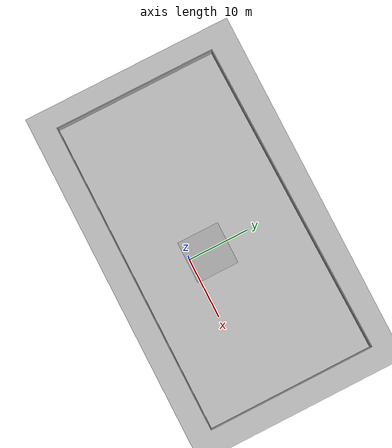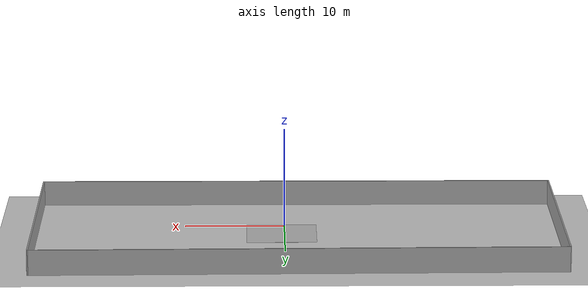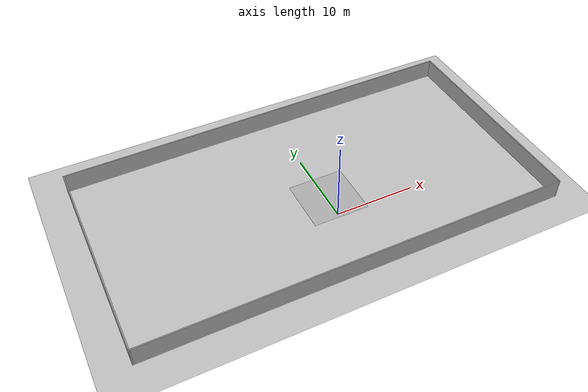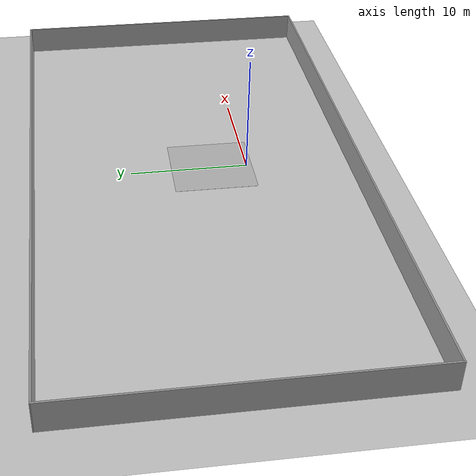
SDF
<sdf version="1.6">
 <world name="default">
  <light name="sun" type="directional">
   <pose>0 0 10 0 -0 0</pose>
   <diffuse>0.8 0.8 0.8 1</diffuse>
   <specular>0.2 0.2 0.2 1</specular>
   <attenuation>
    <range>1000</range>
    <constant>0.9</constant>
    <linear>0.01</linear>
    <quadratic>0.001</quadratic>
   </attenuation>
   <direction>-0.5 0.1 -0.9</direction>
  </light>
  <model name="ground_plane">
   <static>1</static>
   <link name="link">
    <collision name="collision">
     <geometry><plane><normal>0 0 1</normal><size>100 100</size></plane></geometry>
     <surface>
      <contact><collide_bitmask>65535</collide_bitmask></contact>
      <friction><ode><mu>100</mu><mu2>50</mu2></ode></friction>
     </surface>
    </collision>
    <visual name="visual">
     <cast_shadows>0</cast_shadows>
     <geometry><plane><normal>0 0 1</normal><size>100 100</size></plane></geometry>
     <material>
      <script><uri>file://media/materials/scripts/gazebo.material</uri><name>Gazebo/Grey</name></script>
     </material>
    </visual>
   </link>
  </model>
  <gravity>0 0 -9.8</gravity>
  <magnetic_field>6e-06 2.3e-05 -4.2e-05</magnetic_field>
  <atmosphere type="adiabatic"/>
  <physics name="default_physics" default="0" type="ode">
   <max_step_size>0.001</max_step_size>
   <real_time_factor>1</real_time_factor>
   <real_time_update_rate>1000</real_time_update_rate>
  </physics>
  <scene><ambient>0.4 0.4 0.4 1</ambient><background>0.7 0.7 0.7 1</background><shadows>1</shadows></scene>
  <audio><device>default</device></audio>
  <spherical_coordinates>
   <surface_model>EARTH_WGS84</surface_model>
   <latitude_deg>0</latitude_deg>
   <longitude_deg>0</longitude_deg>
   <elevation>0</elevation>
   <heading_deg>0</heading_deg>
  </spherical_coordinates>
  <model name="my_ground_plane">
   <static>1</static>
   <link name="link">
    <collision name="collision">
     <geometry><plane><normal>0 0 1</normal><size>100 100</size></plane></geometry>
     <surface><friction><ode><mu>100</mu><mu2>50</mu2></ode></friction></surface>
    </collision>
    <visual name="visual">
     <cast_shadows>0</cast_shadows>
     <geometry><plane><normal>0 0 1</normal><size>7 7</size></plane></geometry>
     <material>
      <script>
       <uri>model://my_ground_plane/materials/scripts</uri>
       <uri>model://my_ground_plane/materials/textures/</uri>
       <name>MyGroundPlane/Image</name>
      </script>
     </material>
    </visual>
   </link>
   <pose>0.322741 3.02822 0 0 -0 0</pose>
  </model>
  <model name="follwLine">
   <pose>-1.28073 4.87751 0 0 -0 0</pose>
   <link name="Wall_6">
    <collision name="Wall_6_Collision">
     <geometry><box><size>27 0.15 2.5</size></box></geometry>
     <pose>0 0 1.25 0 -0 0</pose>
    </collision>
    <visual name="Wall_6_Visual">
     <pose>0 0 1.25 0 -0 0</pose>
     <geometry><box><size>27 0.15 2.5</size></box></geometry>
     <material>
      <script><uri>file://media/materials/scripts/gazebo.material</uri><name>Gazebo/Grey</name></script>
      <ambient>1 1 1 1</ambient>
     </material>
     <meta><layer>0</layer></meta>
    </visual>
    <pose>-26.05 -0.375535 0 0 -0 -1.5708</pose>
   </link>
   <link name="Wall_7">
    <collision name="Wall_7_Collision">
     <geometry><box><size>52.25 0.15 2.5</size></box></geometry>
     <pose>0 0 1.25 0 -0 0</pose>
    </collision>
    <visual name="Wall_7_Visual">
     <pose>0 0 1.25 0 -0 0</pose>
     <geometry><box><size>52.25 0.15 2.5</size></box></geometry>
     <material>
      <script><uri>file://media/materials/scripts/gazebo.material</uri><name>Gazebo/Grey</name></script>
      <ambient>1 1 1 1</ambient>
     </material>
     <meta><layer>0</layer></meta>
    </visual>
    <pose>-1e-06 -13.8005 0 0 -0 0</pose>
   </link>
   <link name="Wall_8">
    <collision name="Wall_8_Collision">
     <geometry><box><size>27.75 0.15 2.5</size></box></geometry>
     <pose>0 0 1.25 0 -0 0</pose>
    </collision>
    <visual name="Wall_8_Visual">
     <pose>0 0 1.25 0 -0 0</pose>
     <geometry><box><size>27.75 0.15 2.5</size></box></geometry>
     <material>
      <script><uri>file://media/materials/scripts/gazebo.material</uri><name>Gazebo/Grey</name></script>
      <ambient>1 1 1 1</ambient>
     </material>
     <meta><layer>0</layer></meta>
    </visual>
    <pose>26.05 -0.000535 0 0 -0 1.5708</pose>
   </link>
   <link name="Wall_9">
    <collision name="Wall_9_Collision">
     <geometry><box><size>52.2554 0.15 2.5</size></box></geometry>
     <pose>0 0 1.25 0 -0 0</pose>
    </collision>
    <visual name="Wall_9_Visual">
     <pose>0 0 1.25 0 -0 0</pose>
     <geometry><box><size>52.2554 0.15 2.5</size></box></geometry>
     <material>
      <script><uri>file://media/materials/scripts/gazebo.material</uri><name>Gazebo/Grey</name></script>
      <ambient>1 1 1 1</ambient>
     </material>
     <meta><layer>0</layer></meta>
    </visual>
    <pose>-1e-06 13.4245 0 0 -0 -3.1272</pose>
   </link>
   <static>1</static>
  </model>
 </world>
</sdf>
